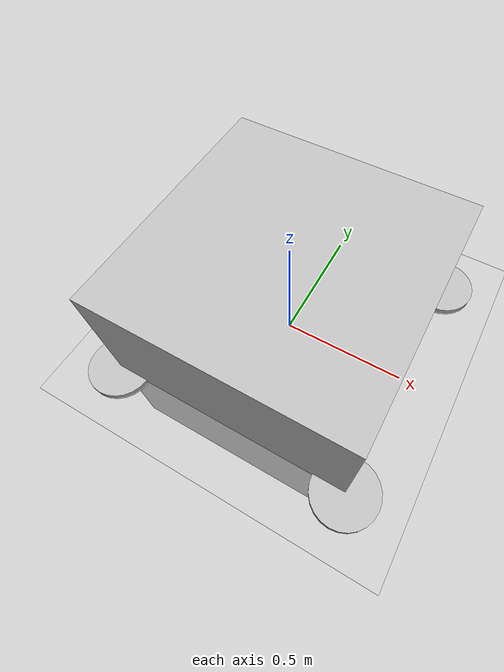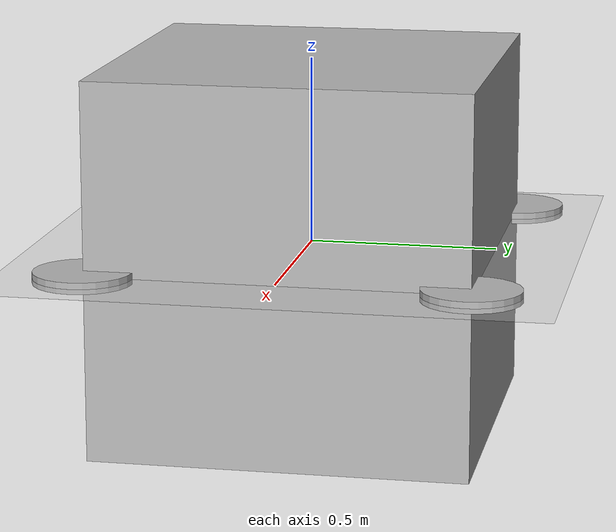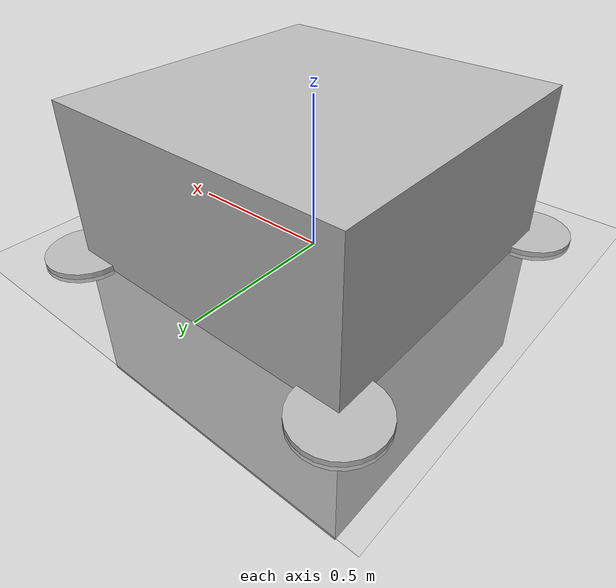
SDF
<?xml version="1.0"?>
<sdf version="1.5">

  <world name="default">

	<!-- A global light source -->
	<include>
  	<uri>model://sun</uri>
	</include>

	<!-- A ground plane -->
	<include>
  	<uri>model://ground_plane</uri>
	</include>

   	<model name="drone">

     	<link name="base_link">
       	<visual name = "base_visual">
        	<pose>0 0 0.005 0 0 0</pose>>
         	<geometry>
           	<box> size="0.05 0.05 0.01" </box>
         	</geometry>
       	</visual>
       	<collision name= "base_collision">
          	<pose>0 0 0.005 0 0 0</pose>>
          	<geometry>
            	<box> size="0.05 0.05 0.01" </box>
          	</geometry>
        	</collision>
     	</link>

     	<link name="FL">
       	<visual name = "front_left_visual">
        	<pose>0.5 0.5 0 0 0 0 </pose>
         	<geometry>
            	<cylinder>
                	<length>0.03</length>
                	<radius>0.13</radius>
            	</cylinder>
         	</geometry>
       	</visual>

       	<collision name = "front_left_collision">
        	<pose>0.5 0.5 0 0 0 0 </pose>
          	<geometry>
            	<cylinder>
                	<length>0.03</length>
                	<radius>0.13</radius>
             	</cylinder>
          	</geometry>
        	</collision>

        	<inertial>
           	<mass>0.2</mass>
           	<inertia>
                	<ixx>1.0</ixx>
                	<iyy>1.0</iyy>
                	<izz>1.0</izz>
                	<ixy>0.0</ixy>
                	<ixz>0.0</ixz>
                	<iyz>0.0</iyz>
           	</inertia>
         	</inertial>

     	</link>

     	<link name="FR">
       	<visual name = "front_right_visual">
        	<pose>0.5 -0.5 0 0 0 0 </pose>
         	<geometry>
            	<cylinder>
                	<length>0.03</length>
                	<radius>0.13</radius>
            	</cylinder>
         	</geometry>
       	</visual>

       	<collision name = "front_right_collision">
        	<pose>0.5 -0.5 0 0 0 0 </pose>
          	<geometry>
            	<cylinder>
                	<length>0.03</length>
                	<radius>0.13</radius>
             	</cylinder>
          	</geometry>
        	</collision>

        	<inertial>
           	<mass>0.2</mass>
           	<inertia>
                	<ixx>1.0</ixx>
                	<iyy>1.0</iyy>
                	<izz>1.0</izz>
                	<ixy>0.0</ixy>
                	<ixz>0.0</ixz>
                	<iyz>0.0</iyz>
           	</inertia>
         	</inertial>

     	</link>

     	<link name="BL">
       	<visual name = "back_left_visual">
        	<pose>-0.5 0.5 0 0 0 0 </pose>
         	<geometry>
            	<cylinder>
                	<length>0.03</length>
                	<radius>0.13</radius>
            	</cylinder>
         	</geometry>
       	</visual>

       	<collision name = "back_left_collision">
        	<pose>-0.5 0.5 0 0 0 0 </pose>
          	<geometry>
            	<cylinder>
                	<length>0.03</length>
                	<radius>0.13</radius>
             	</cylinder>
          	</geometry>
        	</collision>

        	<inertial>
           	<mass>0.2</mass>
           	<inertia>
                	<ixx>1.0</ixx>
                	<iyy>1.0</iyy>
                	<izz>1.0</izz>
                	<ixy>0.0</ixy>
                	<ixz>0.0</ixz>
                	<iyz>0.0</iyz>
           	</inertia>
         	</inertial>

     	</link>

     	<link name="BR">
       	<visual name = "back_right_visual">
        	<pose>-0.5 -0.5 0 0 0 0 </pose>
         	<geometry>
            	<cylinder>
                	<length>0.03</length>
                	<radius>0.13</radius>
            	</cylinder>
         	</geometry>
       	</visual>

       	<collision name = "back_right_collision">
        	<pose>-0.5 -0.5 0 0 0 0 </pose>
          	<geometry>
            	<cylinder>
                	<length>0.03</length>
                	<radius>0.13</radius>
             	</cylinder>
          	</geometry>
        	</collision>

        	<inertial>
           	<mass>0.2</mass>
           	<inertia>
                	<ixx>1.0</ixx>
                	<iyy>1.0</iyy>
                	<izz>1.0</izz>
                	<ixy>0.0</ixy>
                	<ixz>0.0</ixz>
                	<iyz>0.0</iyz>
           	</inertia>
         	</inertial>

     	</link>

     	<joint name="base_to_FL" type="fixed">
       	<parent>base_link</parent>
       	<child>FL</child>
     	</joint>

     	<joint name="base_to_FR" type="fixed">
       	<parent>base_link</parent>
       	<child>FR</child>
     	</joint>

     	<joint name="base_to_BL" type="fixed">
       	<parent>base_link</parent>
       	<child>BL</child>
     	</joint>

     	<joint name="base_to_BR" type="fixed">
       	<parent>base_link</parent>
       	<child>BR</child>
     	</joint>

</model>
	</world>
</sdf>
